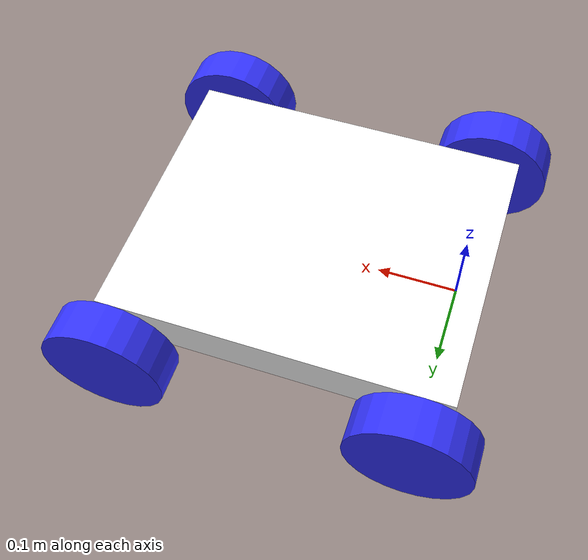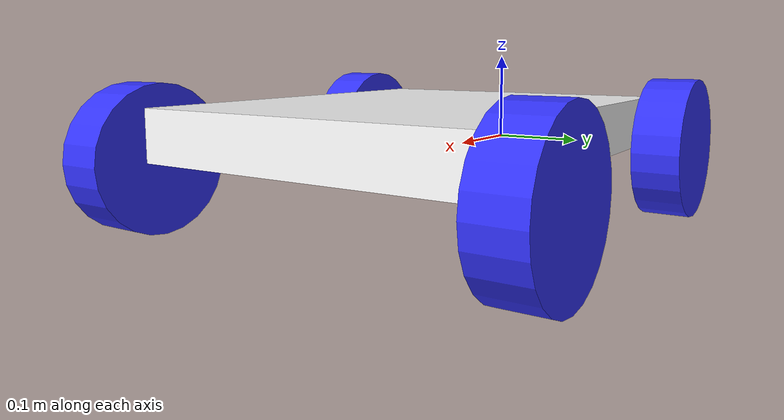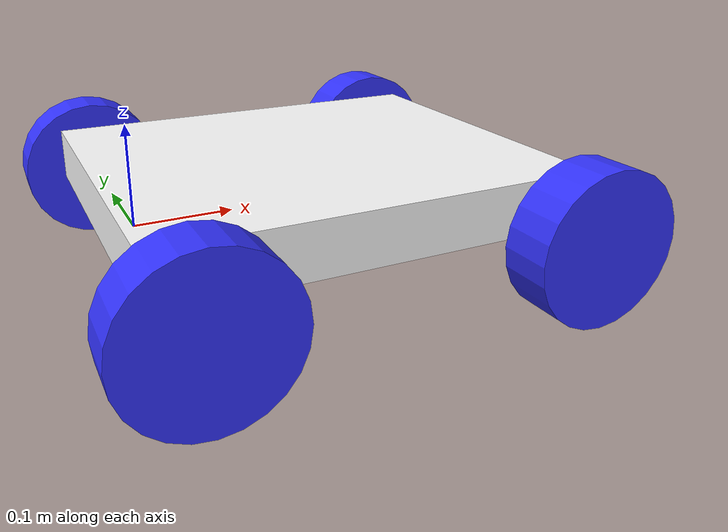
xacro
<?xml version="1.0"?>
<robot xmlns:xacro="http://www.ros.org/wiki/xacro"  name="robot">

<material name="white">
    <color rgba="1 1 1 1"/>
</material>

<material name="orange">
    <color rgba="1 0.3 0.1 1"/>
</material>

<material name="blue">
    <color rgba="0.2 0.2 1 1"/>
</material>

<material name="black">
    <color rgba="0 0 0 1"/>
</material>

<link name="base_link">
</link>

<joint name="chassis_joint" type="fixed">
    <parent link="base_link"/>
    <child link="chassis"/>
    <origin xyz="-0.03556 0 0"/>
</joint>

<link name="chassis">
    <visual>
        <origin xyz="0.2159 0 0.02667" rpy="0 0 0"/>
        <geometry>
            <box size="0.4318 0.35814 0.05334"/>
        </geometry>
        <material name="white"/>
    </visual>
</link>

<!-- REAR LEFT WHEEL -->

<joint name="rear_left_wheel_joint" type="continuous">
    <parent link="base_link"/>
    <child link="rear_left_wheel"/>
    <origin xyz="0 0.215 0" rpy="-${pi/2} 0 0"/>
    <axis xyz="0 0 1"/>
</joint>

<link name="rear_left_wheel">
    <visual>
        <geometry>
            <cylinder length="0.05" radius="0.0762" />/>
        </geometry>
        <material name="blue"/>
    </visual>
</link>

<!-- REAR RIGHT WHEEL -->

<joint name="rear_right_wheel_joint" type="continuous">
    <parent link="base_link"/>
    <child link="rear_right_wheel"/>
    <origin xyz="0 -0.215 0" rpy="${pi/2} 0 0"/>
    <axis xyz="0 0 -1"/>
</joint>

<link name="rear_right_wheel">
    <visual>
        <geometry>
            <cylinder length="0.05" radius="0.0762" />/>
        </geometry>
        <material name="blue"/>
    </visual>
</link>

<!-- FRONT LEFT WHEEL -->

<joint name="front_left_wheel_joint" type="continuous">
    <parent link="base_link"/>
    <child link="front_left_wheel"/>
    <origin xyz="0.368 0.215 0" rpy="-${pi/2} 0 0"/>
    <axis xyz="0 0 1"/>
</joint>

<link name="front_left_wheel">
    <visual>
        <geometry>
            <cylinder length="0.05" radius="0.0762" />/>
        </geometry>
        <material name="blue"/>
    </visual>
</link>

<!-- FRONT RIGHT WHEEL -->

<joint name="front_right_wheel_joint" type="continuous">
    <parent link="base_link"/>
    <child link="front_right_wheel"/>
    <origin xyz="0.368 -0.215 0" rpy="${pi/2} 0 0"/>
    <axis xyz="0 0 -1"/>
</joint>

<link name="front_right_wheel">
    <visual>
        <geometry>
            <cylinder length="0.05" radius="0.0762" />/>
        </geometry>
        <material name="blue"/>
    </visual>
</link>

</robot>
